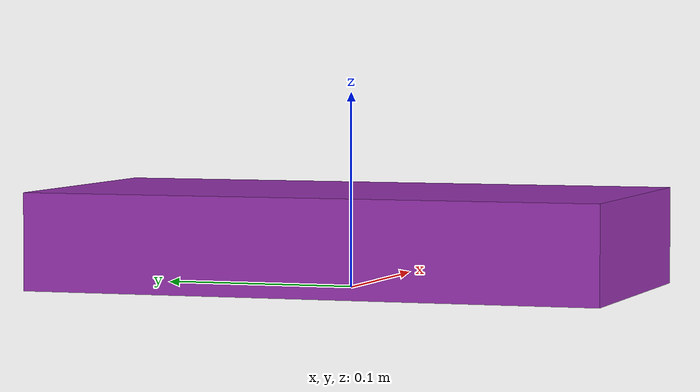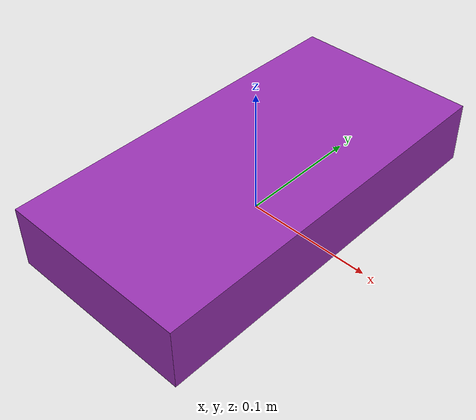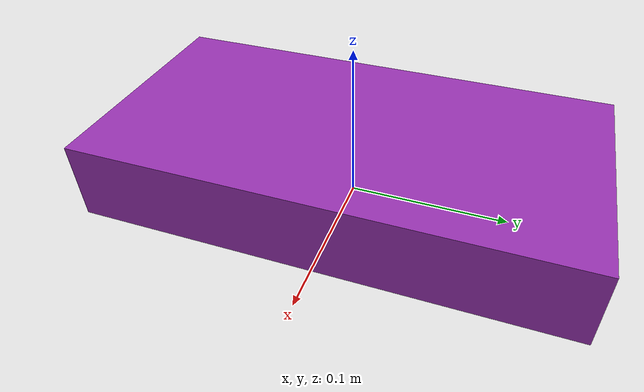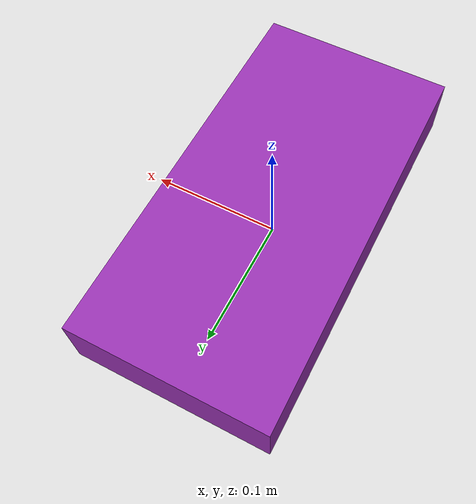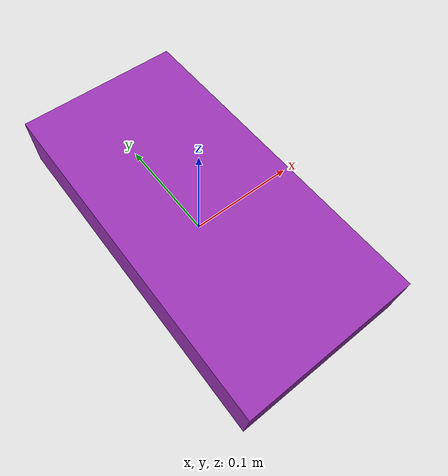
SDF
<?xml version="1.0" ?>

<sdf version="1.5">
  <model name="ycb_base">
    <link name="link">
      <pose>0 0 0.025 0 0 0</pose>
      <inertial>
        <mass>0.01</mass>
        <inertia>
          <ixx>1</ixx>
          <ixy>0</ixy>
          <ixz>0</ixz>
          <iyy>1</iyy>
          <iyz>0</iyz>
          <izz>1</izz>
        </inertia>
      </inertial>
      <collision name='collision'>
        <geometry>
          <box>
            <size>0.15 0.3 0.05</size>
          </box>
        </geometry>
        <surface>
          <friction>
            <ode>
              <mu>1000.0</mu>
              <mu2>100.0</mu2>
            </ode>
          </friction>
          <contact>
            <ode>
              <kp>1000000.0</kp>
              <kd>100.0</kd>
              <max_vel>1.0</max_vel>
              <min_depth>0.001</min_depth>
            </ode>
          </contact>
        </surface>
      </collision>

      <visual name="visual">
        <geometry>
          <box>
            <size>0.15 0.3 0.05</size>
          </box>
        </geometry>
        <material>
          <script>
            <uri>file://media/materials/scripts/gazebo.material</uri>
            <name>Gazebo/Purple</name>
          </script>
        </material>
      </visual>
      <self_collide>0</self_collide>
      <kinematic>0</kinematic>
    </link>
  </model>
</sdf>
